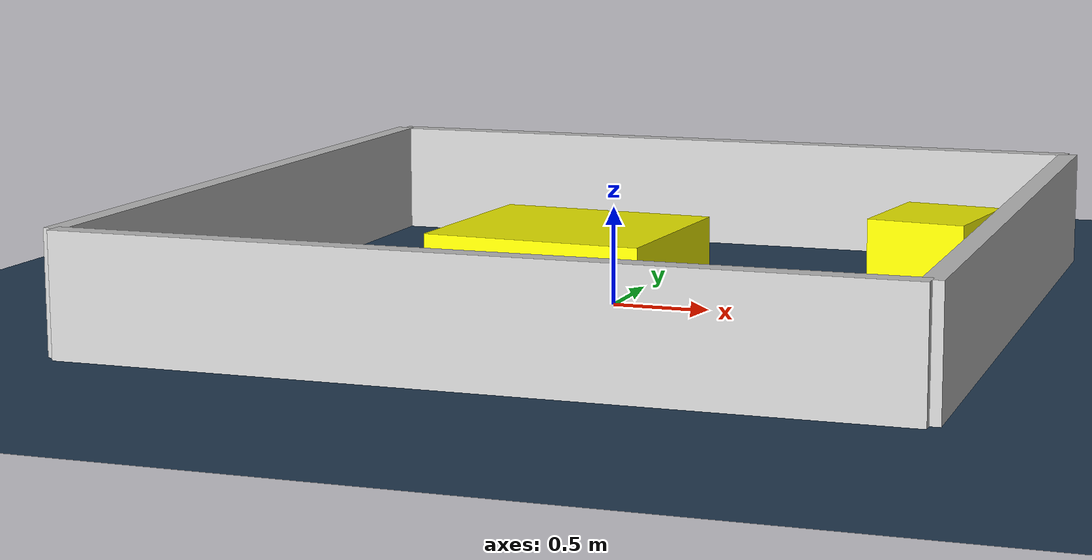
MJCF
<?xml version="1.0" ?>
<mujoco model="generated_environment">
  <option timestep="0.01" integrator="RK4" cone="elliptic"/>
  <default>
    <geom density="1"/>
  </default>
  <asset>
    <texture builtin="gradient" height="3072" rgb1="0.3 0.5 0.7" rgb2="0 0 0" type="skybox" width="512"/>
    <texture builtin="checker" height="300" mark="edge" markrgb="0.8 0.8 0.8" name="groundplane" rgb1="0.2 0.3 0.4" rgb2="0.1 0.2 0.3" type="2d" width="300"/>
    <material name="groundplane" reflectance="0.2" texrepeat="5 5" texture="groundplane" texuniform="true"/>
    <material name="robot" rgba="0.0 1.0 0.0 1"/>
  </asset>
  <worldbody>
    <light dir="0 0 -1" directional="true" pos="0 0 1.5"/>
    <geom condim="4" friction="1.0 0.005 0.001" material="groundplane" name="floor" size="0 0 0.05" type="plane"/>
    <body name="walls">
      <geom name="wall_1" condim="4" pos="-2.0 0.0 0.3" rgba="0.800000011920929 0.800000011920929 0.800000011920929 1.0" size="0.05 2.0 0.3" type="box"/>
      <geom name="wall_2" condim="4" pos="2.0 0.0 0.3" rgba="0.800000011920929 0.800000011920929 0.800000011920929 1.0" size="0.05 2.0 0.3" type="box"/>
      <geom name="wall_3" condim="4" pos="0.0 -2.0 0.3" rgba="0.800000011920929 0.800000011920929 0.800000011920929 1.0" size="2.0 0.05 0.3" type="box"/>
      <geom name="wall_4" condim="4" pos="0.0 2.0 0.3" rgba="0.800000011920929 0.800000011920929 0.800000011920929 1.0" size="2.0 0.05 0.3" type="box"/>
    </body>
    <body name="robot">
      <joint name="joint_x" type="slide" pos="0 0 0" axis="1 0 0"/>
      <joint name="joint_y" type="slide" pos="0 0 0" axis="0 1 0"/>
      <geom name="robot" type="sphere" pos="0.724713498401242 -0.3091582080915942 0.2" size="0.05" mass="5." friction="1.0 0.005 0.0001" condim="4"/>
      <site name="sensor_ball"/>
    </body>
    <body name="obstacle_1_movable">
      <geom name="obstacle_1_movable" condim="4" pos="1.4613522981239386 0.9316830069296276 0.2" euler="0 0 82.15755226533612" friction="1.0 0.005 0.001" rgba="1 1 0 1" size="0.3239607085683662 0.25833165684003034 0.2" type="box" mass="0.1"/>
      <joint type="free"/>
    </body>
    <body name="obstacle_2_movable">
      <geom name="obstacle_2_movable" condim="4" pos="-0.22875391736688644 -0.022651922616667486 0.2" euler="0 0 86.35399680728824" friction="1.0 0.005 0.001" rgba="1 1 0 1" size="0.5146701883868063 0.5683521171136385 0.2" type="box" mass="0.1"/>
      <joint type="free"/>
    </body>
  </worldbody>
  <actuator>
    <motor name="actuator_x" joint="joint_x" gear="1" ctrlrange="-1 1"/>
    <motor name="actuator_y" joint="joint_y" gear="1" ctrlrange="-1 1"/>
  </actuator>
</mujoco>
